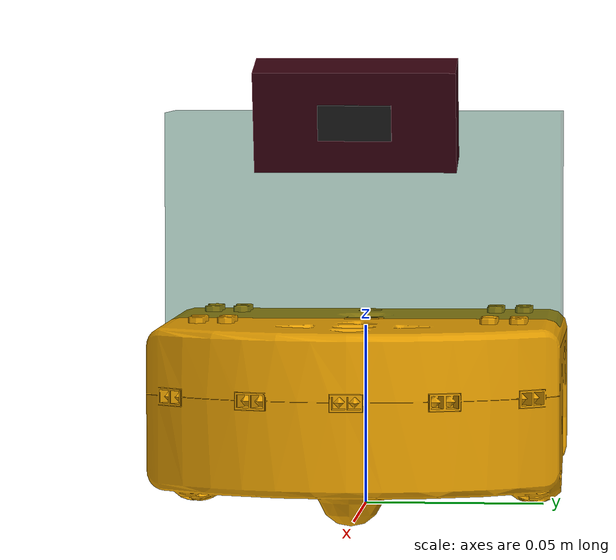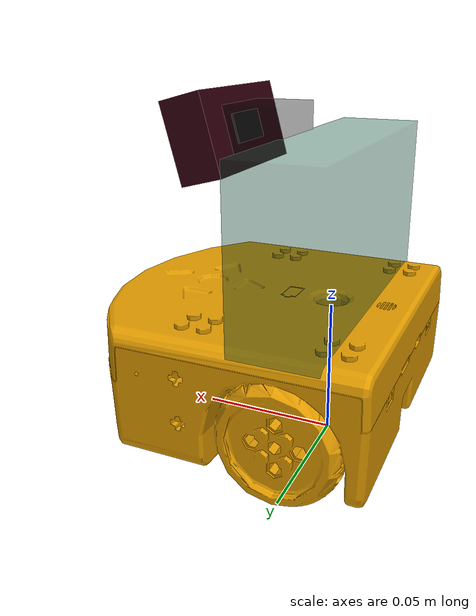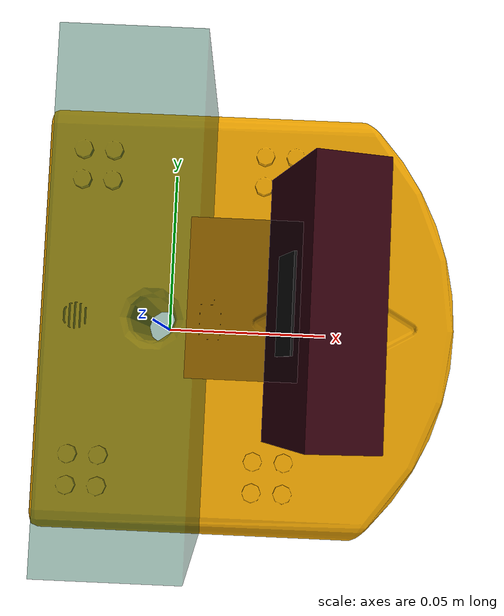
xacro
<?xml version="1.0"?>
<robot name="thymioid" xmlns:xacro="http://playerstage.sourceforge.net/gazebo/xmlschema/#xacro">

  <xacro:include filename="$(find thymio_driver)/models/base.urdf.xacro"/>

  <xacro:thymio />

  <link name="trunk_link">
    <visual>
      <geometry>
	<box size="0.03 0.11 0.06" />
      </geometry>
      <material name="odroid">
	<color rgba="0 0.3 0.2 0.4"/>
      </material>
    </visual>
  </link>

  <link name="camera_support_link">
    <visual>
      <geometry>
	<box size="0.022 0.03 0.02" />
      </geometry>
      <material name="Black">
	<color rgba="0 0.0 0.0 0.4"/>
      </material>
    </visual>
  </link>

  <link name="camera_body_link">
    <visual>
      <geometry>
	<box size="0.015 0.055 0.028" />
      </geometry>
      <material name="Red">
	<color rgba="0.2 0.0 0.05 1.0"/>
      </material>
    </visual>
  </link>

  <link name="camera_link">
    <visual>
      <geometry>
	<box size="0.02 0.01 0.016"/>
      </geometry>
      <material name="Grey">
	<color rgba="0.1 0.1 0.1 1.0"/>
      </material>
    </visual>
  </link>

  <joint name="base_trunk_joint" type="fixed">
    <origin xyz="0.0 0.0 0.08" rpy="0 0 0"/>
    <parent link="base_link"/>
    <child link="trunk_link"/>
  </joint>

  <joint name="trunk_camera_joint" type="fixed">
    <origin xyz="0.025 0 0.03" rpy="0 0 0"/>
    <parent link="trunk_link"/>
    <child link="camera_support_link"/>
  </joint>

  <joint name="camera_body_support_joint" type="fixed">
    <origin xyz="0.015 0 0" rpy="0 0.2618 0"/>
    <parent link="camera_support_link"/>
    <child link="camera_body_link"/>
  </joint>

  <joint name="camera_frame_joint" type="fixed">
    <origin xyz="0.0 0 0" rpy="-1.5708 0 -1.5708"/>
    <parent link="camera_body_link"/>
    <child link="camera_link"/>
  </joint>

</robot>

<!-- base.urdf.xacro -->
<robot xmlns:xacro="http://ros.org/wiki/xacro">

<xacro:macro name="thymio">
  <link name="base_link">
    <visual>
      <geometry>
	<mesh filename="package://thymio_driver/models/meshes/thymio.dae"/>
      </geometry>
    </visual>
  </link>

  <link name="proximity_center_link"/>
  <link name="proximity_center_left_link"/>
  <link name="proximity_center_right_link"/>
  <link name="proximity_left_link"/>
  <link name="proximity_right_link"/>
  <link name="proximity_rear_left_link"/>
  <link name="proximity_rear_right_link"/>
  <link name="ground_left_link"/>
  <link name="ground_right_link"/>

  <joint name="proximity_center_joint" type="fixed">
    <origin xyz="0.08 0 0.034" rpy="0 0 0"/>
    <parent link="base_link"/>
    <child link="proximity_center_link"/>
  </joint>

  <joint name="proximity_center_left_joint" type="fixed">
    <origin xyz="0.0759 0.0252 0.034" rpy="0 0 0.32"/>
    <parent link="base_link"/>
    <child link="proximity_center_left_link"/>
  </joint>

  <joint name="proximity_left_joint" type="fixed">
    <origin xyz="0.0642 0.0478 0.034" rpy="0 0 0.64"/>
    <parent link="base_link"/>
    <child link="proximity_left_link"/>
  </joint>

  <joint name="proximity_center_right_joint" type="fixed">
    <origin xyz="0.0759 -0.0252 0.034" rpy="0 0 -0.32"/>
    <parent link="base_link"/>
    <child link="proximity_center_right_link"/>
  </joint>

  <joint name="proximity_right_joint" type="fixed">
    <origin xyz="0.0642 -0.0478 0.034" rpy="0 0 -0.64"/>
    <parent link="base_link"/>
    <child link="proximity_right_link"/>
  </joint>

  <joint name="proximity_rear_left_joint" type="fixed">
    <origin xyz="-0.03 0.03 0.034" rpy="0 0 3.1416"/>
    <parent link="base_link"/>
    <child link="proximity_rear_left_link"/>
  </joint>

  <joint name="proximity_rear_right_joint" type="fixed">
    <origin xyz="-0.03 -0.03 0.034" rpy="0 0 3.1416"/>
    <parent link="base_link"/>
    <child link="proximity_rear_right_link"/>
  </joint>

  <joint name="ground_right_joint" type="fixed">
    <origin xyz="0.07157 -0.01155 0.008" rpy="0 1.5708 0"/>
    <parent link="base_link"/>
    <child link="ground_right_link"/>
  </joint>

  <joint name="ground_left_joint" type="fixed">
    <origin xyz="0.07157 0.01155 0.008" rpy="0 1.5708 0"/>
    <parent link="base_link"/>
    <child link="ground_left_link"/>
  </joint>

</xacro:macro>

</robot>
